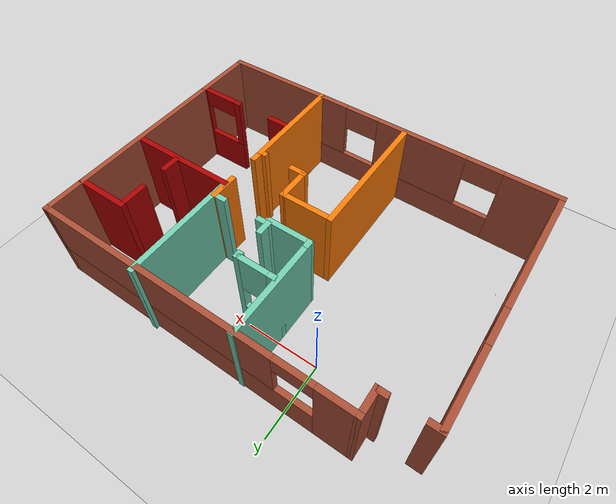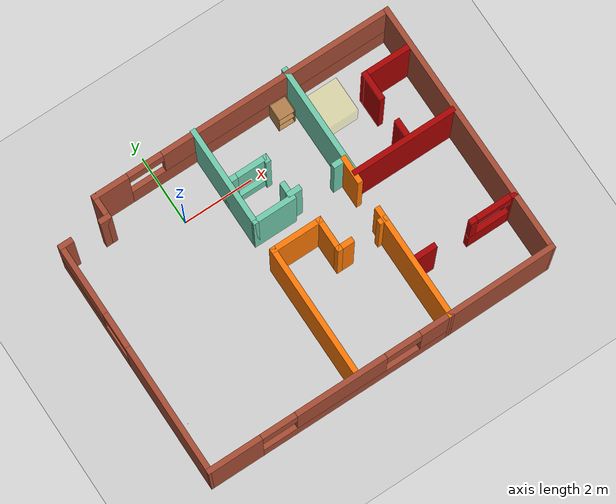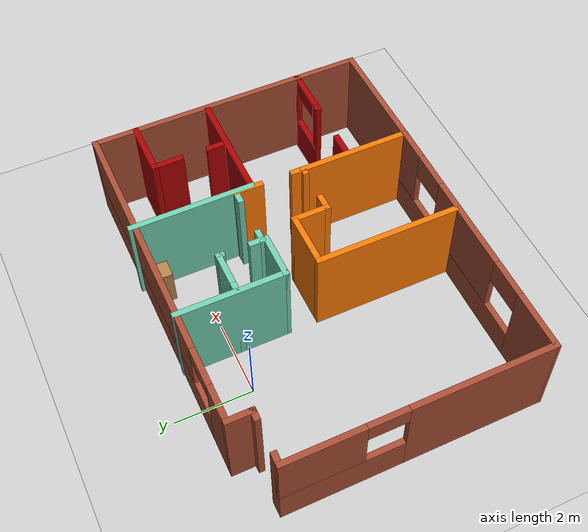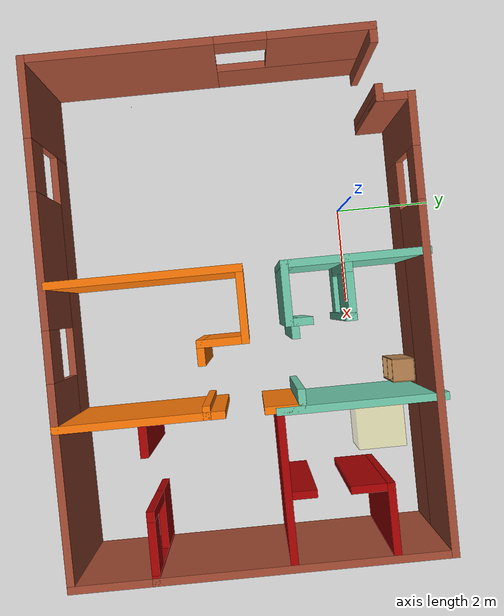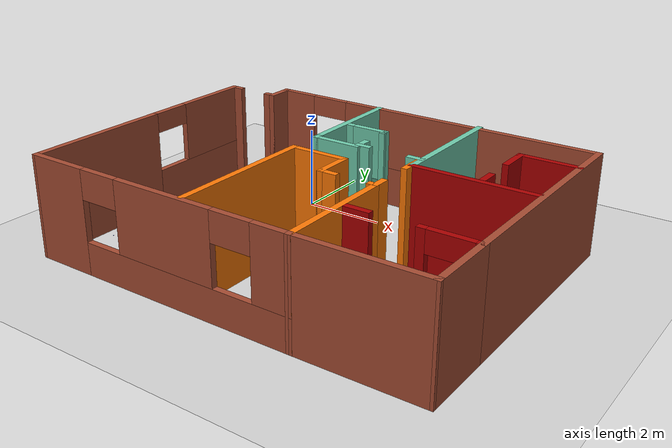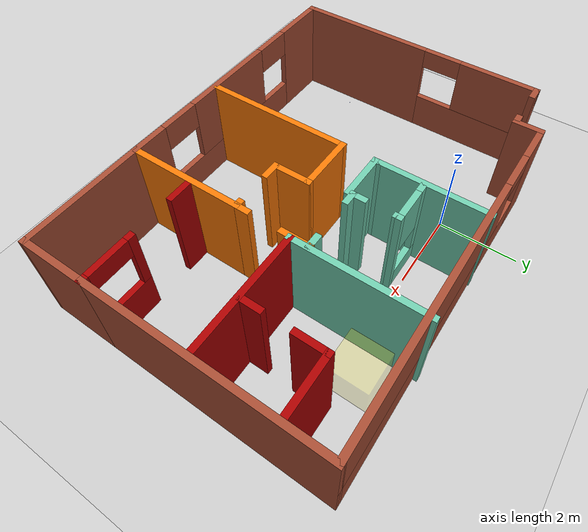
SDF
<sdf version="1.6">
 <world name="default">
  <model name="ground_plane">
   <static>1</static>
   <link name="link">
    <collision name="collision">
     <geometry><plane><normal>0 0 1</normal><size>100 100</size></plane></geometry>
     <surface><friction><ode><mu>100</mu><mu2>50</mu2></ode></friction></surface>
    </collision>
    <visual name="visual">
     <cast_shadows>0</cast_shadows>
     <geometry><plane><normal>0 0 1</normal><size>100 100</size></plane></geometry>
     <material>
      <script><uri>file://media/materials/scripts/gazebo.material</uri><name>Gazebo/Grey</name></script>
     </material>
    </visual>
   </link>
  </model>
  <model name="Building">
   <pose>1.9017 -2.33053 0 0 -0 0</pose>
   <link name="Wall_0">
    <pose>-4.30016 2.9635 0 0 -0 0</pose>
    <visual name="Wall_0_Visual_0">
     <pose>-0.550505 0 1.25 0 -0 0</pose>
     <geometry><box><size>0.39899 0.15 2.5</size></box></geometry>
     <material>
      <script><uri>file://media/materials/scripts/gazebo.material</uri><name>Gazebo/Bricks</name></script>
      <ambient>0.666667 0 0 1</ambient>
     </material>
     <meta><layer>0</layer></meta>
    </visual>
    <collision name="Wall_0_Collision_0">
     <geometry><box><size>0.39899 0.15 2.5</size></box></geometry>
     <pose>-0.550505 0 1.25 0 -0 0</pose>
    </collision>
    <visual name="Wall_0_Visual_1">
     <pose>0.581495 0 1.25 0 -0 0</pose>
     <geometry><box><size>0.33701 0.15 2.5</size></box></geometry>
     <material>
      <script><uri>file://media/materials/scripts/gazebo.material</uri><name>Gazebo/Bricks</name></script>
      <ambient>0.666667 0 0 1</ambient>
     </material>
     <meta><layer>0</layer></meta>
    </visual>
    <collision name="Wall_0_Collision_1">
     <geometry><box><size>0.33701 0.15 2.5</size></box></geometry>
     <pose>0.581495 0 1.25 0 -0 0</pose>
    </collision>
   </link>
   <link name="Wall_1">
    <collision name="Wall_1_Collision">
     <geometry><box><size>0.75 0.15 2.5</size></box></geometry>
     <pose>0 0 1.25 0 -0 0</pose>
    </collision>
    <visual name="Wall_1_Visual">
     <pose>0 0 1.25 0 -0 0</pose>
     <geometry><box><size>0.75 0.15 2.5</size></box></geometry>
     <material>
      <script><uri>file://media/materials/scripts/gazebo.material</uri><name>Gazebo/Bricks</name></script>
      <ambient>0.666667 0 0 1</ambient>
     </material>
     <meta><layer>0</layer></meta>
    </visual>
    <pose>-3.62515 3.2635 0 0 -0 1.5708</pose>
   </link>
   <link name="Wall_11">
    <pose>0.391864 1.53887 0 0 -0 1.5708</pose>
    <visual name="Wall_11_Visual_0">
     <pose>-0.412394 0 1.25 0 -0 0</pose>
     <geometry><box><size>0.425213 0.15 2.5</size></box></geometry>
     <material>
      <script><uri>file://media/materials/scripts/gazebo.material</uri><name>Gazebo/Grey</name></script>
      <ambient>0.435294 0.796078 0.67451 1</ambient>
     </material>
     <meta><layer>0</layer></meta>
    </visual>
    <collision name="Wall_11_Collision_0">
     <geometry><box><size>0.425213 0.15 2.5</size></box></geometry>
     <pose>-0.412394 0 1.25 0 -0 0</pose>
    </collision>
    <visual name="Wall_11_Visual_1">
     <pose>0.515606 0 1.25 0 -0 0</pose>
     <geometry><box><size>0.218787 0.15 2.5</size></box></geometry>
     <material>
      <script><uri>file://media/materials/scripts/gazebo.material</uri><name>Gazebo/Grey</name></script>
      <ambient>0.435294 0.796078 0.67451 1</ambient>
     </material>
     <meta><layer>0</layer></meta>
    </visual>
    <collision name="Wall_11_Collision_1">
     <geometry><box><size>0.218787 0.15 2.5</size></box></geometry>
     <pose>0.515606 0 1.25 0 -0 0</pose>
    </collision>
   </link>
   <link name="Wall_12">
    <pose>-0.158136 2.08887 0 0 -0 3.14159</pose>
    <visual name="Wall_12_Visual_0">
     <pose>-0.568138 0 1.25 0 -0 0</pose>
     <geometry><box><size>0.113724 0.15 2.5</size></box></geometry>
     <material>
      <script><uri>file://media/materials/scripts/gazebo.material</uri><name>Gazebo/Grey</name></script>
      <ambient>0.435294 0.796078 0.67451 1</ambient>
     </material>
     <meta><layer>0</layer></meta>
    </visual>
    <collision name="Wall_12_Collision_0">
     <geometry><box><size>0.113724 0.15 2.5</size></box></geometry>
     <pose>-0.568138 0 1.25 0 -0 0</pose>
    </collision>
    <visual name="Wall_12_Visual_1">
     <pose>0.056862 0 0.25 0 -0 0</pose>
     <geometry><box><size>1.13628 0.15 0.5</size></box></geometry>
     <material>
      <script><uri>file://media/materials/scripts/gazebo.material</uri><name>Gazebo/Grey</name></script>
      <ambient>0.435294 0.796078 0.67451 1</ambient>
     </material>
     <meta><layer>0</layer></meta>
    </visual>
    <collision name="Wall_12_Collision_1">
     <geometry><box><size>1.13628 0.15 0.5</size></box></geometry>
     <pose>0.056862 0 0.25 0 -0 0</pose>
    </collision>
    <visual name="Wall_12_Visual_2">
     <pose>0.456862 0 1.5 0 -0 0</pose>
     <geometry><box><size>0.336276 0.15 2</size></box></geometry>
     <material>
      <script><uri>file://media/materials/scripts/gazebo.material</uri><name>Gazebo/Grey</name></script>
      <ambient>0.435294 0.796078 0.67451 1</ambient>
     </material>
     <meta><layer>0</layer></meta>
    </visual>
    <collision name="Wall_12_Collision_2">
     <geometry><box><size>0.336276 0.15 2</size></box></geometry>
     <pose>0.456862 0 1.5 0 -0 0</pose>
    </collision>
    <visual name="Wall_12_Visual_3">
     <pose>-0.111276 0 1.9 0 -0 0</pose>
     <geometry><box><size>0.8 0.15 1.2</size></box></geometry>
     <material>
      <script><uri>file://media/materials/scripts/gazebo.material</uri><name>Gazebo/Grey</name></script>
      <ambient>0.435294 0.796078 0.67451 1</ambient>
     </material>
     <meta><layer>0</layer></meta>
    </visual>
    <collision name="Wall_12_Collision_3">
     <geometry><box><size>0.8 0.15 1.2</size></box></geometry>
     <pose>-0.111276 0 1.9 0 -0 0</pose>
    </collision>
   </link>
   <link name="Wall_16">
    <pose>1.19186 0.988869 0 0 -0 0</pose>
    <visual name="Wall_16_Visual_0">
     <pose>-0.680281 0 1.25 0 -0 0</pose>
     <geometry><box><size>0.389438 0.15 2.5</size></box></geometry>
     <material>
      <script><uri>file://media/materials/scripts/gazebo.material</uri><name>Gazebo/Grey</name></script>
      <ambient>0.435294 0.796078 0.67451 1</ambient>
     </material>
     <meta><layer>0</layer></meta>
    </visual>
    <collision name="Wall_16_Collision_0">
     <geometry><box><size>0.389438 0.15 2.5</size></box></geometry>
     <pose>-0.680281 0 1.25 0 -0 0</pose>
    </collision>
    <visual name="Wall_16_Visual_1">
     <pose>0.663744 0 1.25 0 -0 0</pose>
     <geometry><box><size>0.422512 0.15 2.5</size></box></geometry>
     <material>
      <script><uri>file://media/materials/scripts/gazebo.material</uri><name>Gazebo/Grey</name></script>
      <ambient>0.435294 0.796078 0.67451 1</ambient>
     </material>
     <meta><layer>0</layer></meta>
    </visual>
    <collision name="Wall_16_Collision_1">
     <geometry><box><size>0.422512 0.15 2.5</size></box></geometry>
     <pose>0.663744 0 1.25 0 -0 0</pose>
    </collision>
   </link>
   <link name="Wall_18">
    <collision name="Wall_18_Collision">
     <geometry><box><size>0.25 0.15 2.5</size></box></geometry>
     <pose>0 0 1.25 0 -0 0</pose>
    </collision>
    <visual name="Wall_18_Visual">
     <pose>0 0 1.25 0 -0 0</pose>
     <geometry><box><size>0.25 0.15 2.5</size></box></geometry>
     <material>
      <script><uri>file://media/materials/scripts/gazebo.material</uri><name>Gazebo/Grey</name></script>
      <ambient>0.435294 0.796078 0.67451 1</ambient>
     </material>
     <meta><layer>0</layer></meta>
    </visual>
    <pose>-0.708136 0.938869 0 0 0 -1.5708</pose>
   </link>
   <link name="Wall_19">
    <collision name="Wall_19_Collision">
     <geometry><box><size>1.25 0.15 2.5</size></box></geometry>
     <pose>0 0 1.25 0 -0 0</pose>
    </collision>
    <visual name="Wall_19_Visual">
     <pose>0 0 1.25 0 -0 0</pose>
     <geometry><box><size>1.25 0.15 2.5</size></box></geometry>
     <material>
      <script><uri>file://media/materials/scripts/gazebo.material</uri><name>Gazebo/Grey</name></script>
      <ambient>0.435294 0.796078 0.67451 1</ambient>
     </material>
     <meta><layer>0</layer></meta>
    </visual>
    <pose>-0.158136 0.888869 0 0 -0 0</pose>
   </link>
   <link name="Wall_2">
    <pose>0.674845 3.5635 0 0 -0 0</pose>
    <visual name="Wall_2_Visual_0">
     <pose>-3.86007 0 1.25 0 -0 0</pose>
     <geometry><box><size>1.02985 0.15 2.5</size></box></geometry>
     <material>
      <script><uri>file://media/materials/scripts/gazebo.material</uri><name>Gazebo/Bricks</name></script>
      <ambient>0.666667 0 0 1</ambient>
     </material>
     <meta><layer>0</layer></meta>
    </visual>
    <collision name="Wall_2_Collision_0">
     <geometry><box><size>1.02985 0.15 2.5</size></box></geometry>
     <pose>-3.86007 0 1.25 0 -0 0</pose>
    </collision>
    <visual name="Wall_2_Visual_1">
     <pose>0.514926 0 0.5 0 -0 0</pose>
     <geometry><box><size>7.72015 0.15 1</size></box></geometry>
     <material>
      <script><uri>file://media/materials/scripts/gazebo.material</uri><name>Gazebo/Bricks</name></script>
      <ambient>0.666667 0 0 1</ambient>
     </material>
     <meta><layer>0</layer></meta>
    </visual>
    <collision name="Wall_2_Collision_1">
     <geometry><box><size>7.72015 0.15 1</size></box></geometry>
     <pose>0.514926 0 0.5 0 -0 0</pose>
    </collision>
    <visual name="Wall_2_Visual_2">
     <pose>1.01493 0 1.75 0 -0 0</pose>
     <geometry><box><size>6.72015 0.15 1.5</size></box></geometry>
     <material>
      <script><uri>file://media/materials/scripts/gazebo.material</uri><name>Gazebo/Bricks</name></script>
      <ambient>0.666667 0 0 1</ambient>
     </material>
     <meta><layer>0</layer></meta>
    </visual>
    <collision name="Wall_2_Collision_2">
     <geometry><box><size>6.72015 0.15 1.5</size></box></geometry>
     <pose>1.01493 0 1.75 0 -0 0</pose>
    </collision>
    <visual name="Wall_2_Visual_3">
     <pose>-2.84515 0 2.25 0 -0 0</pose>
     <geometry><box><size>1 0.15 0.5</size></box></geometry>
     <material>
      <script><uri>file://media/materials/scripts/gazebo.material</uri><name>Gazebo/Bricks</name></script>
      <ambient>0.666667 0 0 1</ambient>
     </material>
     <meta><layer>0</layer></meta>
    </visual>
    <collision name="Wall_2_Collision_3">
     <geometry><box><size>1 0.15 0.5</size></box></geometry>
     <pose>-2.84515 0 2.25 0 -0 0</pose>
    </collision>
   </link>
   <link name="Wall_3">
    <collision name="Wall_3_Collision">
     <geometry><box><size>5.75 0.15 2.5</size></box></geometry>
     <pose>0 0 1.25 0 -0 0</pose>
    </collision>
    <visual name="Wall_3_Visual">
     <pose>0 0 1.25 0 -0 0</pose>
     <geometry><box><size>5.75 0.15 2.5</size></box></geometry>
     <material>
      <script><uri>file://media/materials/scripts/gazebo.material</uri><name>Gazebo/Bricks</name></script>
      <ambient>0.666667 0 0 1</ambient>
     </material>
     <meta><layer>0</layer></meta>
    </visual>
    <pose>4.97485 0.7635 0 0 0 -1.5708</pose>
   </link>
   <link name="Wall_37">
    <collision name="Wall_37_Collision">
     <geometry><box><size>3.25 0.15 2.5</size></box></geometry>
     <pose>0 0 1.25 0 -0 0</pose>
    </collision>
    <visual name="Wall_37_Visual">
     <pose>0 0 1.25 0 -0 0</pose>
     <geometry><box><size>3.25 0.15 2.5</size></box></geometry>
     <material>
      <script><uri>file://media/materials/scripts/gazebo.material</uri><name>Gazebo/Grey</name></script>
      <ambient>0.435294 0.796078 0.67451 1</ambient>
     </material>
     <meta><layer>0</layer></meta>
    </visual>
    <pose>2.03032 2.10888 0 0 0 -1.5708</pose>
   </link>
   <link name="Wall_39">
    <collision name="Wall_39_Collision">
     <geometry><box><size>3.75 0.15 2.5</size></box></geometry>
     <pose>0 0 1.25 0 -0 0</pose>
    </collision>
    <visual name="Wall_39_Visual">
     <pose>0 0 1.25 0 -0 0</pose>
     <geometry><box><size>3.75 0.15 2.5</size></box></geometry>
     <material>
      <script><uri>file://media/materials/scripts/gazebo.material</uri><name>Gazebo/Grey</name></script>
      <ambient>0.996078 0.47451 0.0196078 1</ambient>
     </material>
     <meta><layer>0</layer></meta>
    </visual>
    <pose>-0.719298 -1.75833 0 0 -0 1.5708</pose>
   </link>
   <link name="Wall_4">
    <pose>3.54984 -2.0365 0 0 -0 3.14159</pose>
    <visual name="Wall_4_Visual_0">
     <pose>-1.40037 0 1.25 0 -0 0</pose>
     <geometry><box><size>0.199251 0.15 2.5</size></box></geometry>
     <material>
      <script><uri>file://media/materials/scripts/gazebo.material</uri><name>Gazebo/Grey</name></script>
      <ambient>0.666667 0 0 1</ambient>
     </material>
     <meta><layer>0</layer></meta>
    </visual>
    <collision name="Wall_4_Collision_0">
     <geometry><box><size>0.199251 0.15 2.5</size></box></geometry>
     <pose>-1.40037 0 1.25 0 -0 0</pose>
    </collision>
    <visual name="Wall_4_Visual_1">
     <pose>1.1996 0 1.25 0 -0 0</pose>
     <geometry><box><size>0.600792 0.15 2.5</size></box></geometry>
     <material>
      <script><uri>file://media/materials/scripts/gazebo.material</uri><name>Gazebo/Grey</name></script>
      <ambient>0.666667 0 0 1</ambient>
     </material>
     <meta><layer>0</layer></meta>
    </visual>
    <collision name="Wall_4_Collision_1">
     <geometry><box><size>0.600792 0.15 2.5</size></box></geometry>
     <pose>1.1996 0 1.25 0 -0 0</pose>
    </collision>
    <visual name="Wall_4_Visual_2">
     <pose>-0.70027 0 0.5 0 -0 0</pose>
     <geometry><box><size>1.20096 0.15 1</size></box></geometry>
     <material>
      <script><uri>file://media/materials/scripts/gazebo.material</uri><name>Gazebo/Grey</name></script>
      <ambient>0.666667 0 0 1</ambient>
     </material>
     <meta><layer>0</layer></meta>
    </visual>
    <collision name="Wall_4_Collision_2">
     <geometry><box><size>1.20096 0.15 1</size></box></geometry>
     <pose>-0.70027 0 0.5 0 -0 0</pose>
    </collision>
    <visual name="Wall_4_Visual_3">
     <pose>-0.20027 0 1.75 0 -0 0</pose>
     <geometry><box><size>0.200957 0.15 1.5</size></box></geometry>
     <material>
      <script><uri>file://media/materials/scripts/gazebo.material</uri><name>Gazebo/Grey</name></script>
      <ambient>0.666667 0 0 1</ambient>
     </material>
     <meta><layer>0</layer></meta>
    </visual>
    <collision name="Wall_4_Collision_3">
     <geometry><box><size>0.200957 0.15 1.5</size></box></geometry>
     <pose>-0.20027 0 1.75 0 -0 0</pose>
    </collision>
    <visual name="Wall_4_Visual_4">
     <pose>-0.800749 0 2.25 0 -0 0</pose>
     <geometry><box><size>1 0.15 0.5</size></box></geometry>
     <material>
      <script><uri>file://media/materials/scripts/gazebo.material</uri><name>Gazebo/Grey</name></script>
      <ambient>0.666667 0 0 1</ambient>
     </material>
     <meta><layer>0</layer></meta>
    </visual>
    <collision name="Wall_4_Collision_4">
     <geometry><box><size>1 0.15 0.5</size></box></geometry>
     <pose>-0.800749 0 2.25 0 -0 0</pose>
    </collision>
   </link>
   <link name="Wall_50">
    <collision name="Wall_50_Collision">
     <geometry><box><size>1.5 0.15 2.5</size></box></geometry>
     <pose>0 0 1.25 0 -0 0</pose>
    </collision>
    <visual name="Wall_50_Visual">
     <pose>0 0 1.25 0 -0 0</pose>
     <geometry><box><size>1.5 0.15 2.5</size></box></geometry>
     <material>
      <script><uri>file://media/materials/scripts/gazebo.material</uri><name>Gazebo/Grey</name></script>
      <ambient>0.996078 0.47451 0.0196078 1</ambient>
     </material>
     <meta><layer>0</layer></meta>
    </visual>
    <pose>-0.044298 0.041665 0 0 -0 0</pose>
   </link>
   <link name="Wall_51">
    <collision name="Wall_51_Collision">
     <geometry><box><size>1 0.15 2.5</size></box></geometry>
     <pose>0 0 1.25 0 -0 0</pose>
    </collision>
    <visual name="Wall_51_Visual">
     <pose>0 0 1.25 0 -0 0</pose>
     <geometry><box><size>1 0.15 2.5</size></box></geometry>
     <material>
      <script><uri>file://media/materials/scripts/gazebo.material</uri><name>Gazebo/Grey</name></script>
      <ambient>0.996078 0.47451 0.0196078 1</ambient>
     </material>
     <meta><layer>0</layer></meta>
    </visual>
    <pose>0.630702 -0.383335 0 0 0 -1.5708</pose>
   </link>
   <link name="Wall_52">
    <pose>1.3057 -0.808335 0 0 -0 0</pose>
    <visual name="Wall_52_Visual_0">
     <pose>-0.504705 0 1.25 0 -0 0</pose>
     <geometry><box><size>0.490591 0.15 2.5</size></box></geometry>
     <material>
      <script><uri>file://media/materials/scripts/gazebo.material</uri><name>Gazebo/Grey</name></script>
      <ambient>0.996078 0.47451 0.0196078 1</ambient>
     </material>
     <meta><layer>0</layer></meta>
    </visual>
    <collision name="Wall_52_Collision_0">
     <geometry><box><size>0.490591 0.15 2.5</size></box></geometry>
     <pose>-0.504705 0 1.25 0 -0 0</pose>
    </collision>
    <visual name="Wall_52_Visual_1">
     <pose>0.617295 0 1.25 0 -0 0</pose>
     <geometry><box><size>0.265409 0.15 2.5</size></box></geometry>
     <material>
      <script><uri>file://media/materials/scripts/gazebo.material</uri><name>Gazebo/Grey</name></script>
      <ambient>0.996078 0.47451 0.0196078 1</ambient>
     </material>
     <meta><layer>0</layer></meta>
    </visual>
    <collision name="Wall_52_Collision_1">
     <geometry><box><size>0.265409 0.15 2.5</size></box></geometry>
     <pose>0.617295 0 1.25 0 -0 0</pose>
    </collision>
   </link>
   <link name="Wall_54">
    <collision name="Wall_54_Collision">
     <geometry><box><size>3 0.15 2.5</size></box></geometry>
     <pose>0 0 1.25 0 -0 0</pose>
    </collision>
    <visual name="Wall_54_Visual">
     <pose>0 0 1.25 0 -0 0</pose>
     <geometry><box><size>3 0.15 2.5</size></box></geometry>
     <material>
      <script><uri>file://media/materials/scripts/gazebo.material</uri><name>Gazebo/Grey</name></script>
      <ambient>0.996078 0.47451 0.0196078 1</ambient>
     </material>
     <meta><layer>0</layer></meta>
    </visual>
    <pose>1.9807 -2.23333 0 0 0 -1.5708</pose>
   </link>
   <link name="Wall_56">
    <pose>-1.49723 -3.64742 0 0 0 -0.003139</pose>
    <visual name="Wall_56_Visual_0">
     <pose>-2.77726 0 1.25 0 -0 0</pose>
     <geometry><box><size>1.55137 0.15 2.5</size></box></geometry>
     <material>
      <script><uri>file://media/materials/scripts/gazebo.material</uri><name>Gazebo/Bricks</name></script>
      <ambient>0.666667 0 0 1</ambient>
     </material>
     <meta><layer>0</layer></meta>
    </visual>
    <collision name="Wall_56_Collision_0">
     <geometry><box><size>1.55137 0.15 2.5</size></box></geometry>
     <pose>-2.77726 0 1.25 0 -0 0</pose>
    </collision>
    <visual name="Wall_56_Visual_1">
     <pose>0.775684 0 0.4 0 -0 0</pose>
     <geometry><box><size>5.55452 0.15 0.8</size></box></geometry>
     <material>
      <script><uri>file://media/materials/scripts/gazebo.material</uri><name>Gazebo/Bricks</name></script>
      <ambient>0.666667 0 0 1</ambient>
     </material>
     <meta><layer>0</layer></meta>
    </visual>
    <collision name="Wall_56_Collision_1">
     <geometry><box><size>5.55452 0.15 0.8</size></box></geometry>
     <pose>0.775684 0 0.4 0 -0 0</pose>
    </collision>
    <visual name="Wall_56_Visual_2">
     <pose>0.299823 0 1.65 0 -0 0</pose>
     <geometry><box><size>2.6028 0.15 1.7</size></box></geometry>
     <material>
      <script><uri>file://media/materials/scripts/gazebo.material</uri><name>Gazebo/Bricks</name></script>
      <ambient>0.666667 0 0 1</ambient>
     </material>
     <meta><layer>0</layer></meta>
    </visual>
    <collision name="Wall_56_Collision_2">
     <geometry><box><size>2.6028 0.15 1.7</size></box></geometry>
     <pose>0.299823 0 1.65 0 -0 0</pose>
    </collision>
    <visual name="Wall_56_Visual_3">
     <pose>3.07708 0 1.65 0 -0 0</pose>
     <geometry><box><size>0.951723 0.15 1.7</size></box></geometry>
     <material>
      <script><uri>file://media/materials/scripts/gazebo.material</uri><name>Gazebo/Bricks</name></script>
      <ambient>0.666667 0 0 1</ambient>
     </material>
     <meta><layer>0</layer></meta>
    </visual>
    <collision name="Wall_56_Collision_3">
     <geometry><box><size>0.951723 0.15 1.7</size></box></geometry>
     <pose>3.07708 0 1.65 0 -0 0</pose>
    </collision>
    <visual name="Wall_56_Visual_4">
     <pose>-1.50158 0 2.15 0 -0 0</pose>
     <geometry><box><size>1 0.15 0.7</size></box></geometry>
     <material>
      <script><uri>file://media/materials/scripts/gazebo.material</uri><name>Gazebo/Bricks</name></script>
      <ambient>0.666667 0 0 1</ambient>
     </material>
     <meta><layer>0</layer></meta>
    </visual>
    <collision name="Wall_56_Collision_4">
     <geometry><box><size>1 0.15 0.7</size></box></geometry>
     <pose>-1.50158 0 2.15 0 -0 0</pose>
    </collision>
    <visual name="Wall_56_Visual_5">
     <pose>2.10122 0 2.15 0 -0 0</pose>
     <geometry><box><size>1 0.15 0.7</size></box></geometry>
     <material>
      <script><uri>file://media/materials/scripts/gazebo.material</uri><name>Gazebo/Bricks</name></script>
      <ambient>0.666667 0 0 1</ambient>
     </material>
     <meta><layer>0</layer></meta>
    </visual>
    <collision name="Wall_56_Collision_5">
     <geometry><box><size>1 0.15 0.7</size></box></geometry>
     <pose>2.10122 0 2.15 0 -0 0</pose>
    </collision>
   </link>
   <link name="Wall_58">
    <pose>1.98628 0.090267 0 0 -0 1.56458</pose>
    <visual name="Wall_58_Visual_0">
     <pose>-0.761715 0 1.25 0 -0 0</pose>
     <geometry><box><size>0.423808 0.15 2.5</size></box></geometry>
     <material>
      <script><uri>file://media/materials/scripts/gazebo.material</uri><name>Gazebo/Grey</name></script>
      <ambient>0.996078 0.47451 0.0196078 1</ambient>
     </material>
     <meta><layer>0</layer></meta>
    </visual>
    <collision name="Wall_58_Collision_0">
     <geometry><box><size>0.423808 0.15 2.5</size></box></geometry>
     <pose>-0.761715 0 1.25 0 -0 0</pose>
    </collision>
    <visual name="Wall_58_Visual_1">
     <pose>0.577384 0 1.25 0 -0 0</pose>
     <geometry><box><size>0.792471 0.15 2.5</size></box></geometry>
     <material>
      <script><uri>file://media/materials/scripts/gazebo.material</uri><name>Gazebo/Grey</name></script>
      <ambient>0.996078 0.47451 0.0196078 1</ambient>
     </material>
     <meta><layer>0</layer></meta>
    </visual>
    <collision name="Wall_58_Collision_1">
     <geometry><box><size>0.792471 0.15 2.5</size></box></geometry>
     <pose>0.577384 0 1.25 0 -0 0</pose>
    </collision>
   </link>
   <link name="Wall_60">
    <collision name="Wall_60_Collision">
     <geometry><box><size>1.75 0.15 2.5</size></box></geometry>
     <pose>0 0 1.25 0 -0 0</pose>
    </collision>
    <visual name="Wall_60_Visual">
     <pose>0 0 1.25 0 -0 0</pose>
     <geometry><box><size>1.75 0.15 2.5</size></box></geometry>
     <material>
      <script><uri>file://media/materials/scripts/gazebo.material</uri><name>Gazebo/Bricks</name></script>
      <ambient>0.666667 0 0 1</ambient>
     </material>
     <meta><layer>0</layer></meta>
    </visual>
    <pose>4.97485 -2.8365 0 0 0 -1.5708</pose>
   </link>
   <link name="Wall_61">
    <collision name="Wall_61_Collision">
     <geometry><box><size>3.14422 0.15 2.5</size></box></geometry>
     <pose>0 0 1.25 0 -0 0</pose>
    </collision>
    <visual name="Wall_61_Visual">
     <pose>0 0 1.25 0 -0 0</pose>
     <geometry><box><size>3.14422 0.15 2.5</size></box></geometry>
     <material>
      <script><uri>file://media/materials/scripts/gazebo.material</uri><name>Gazebo/Bricks</name></script>
      <ambient>0.666667 0 0 1</ambient>
     </material>
     <meta><layer>0</layer></meta>
    </visual>
    <pose>3.47777 -3.64742 0 0 0 -3.1343</pose>
   </link>
   <link name="Wall_63">
    <collision name="Wall_63_Collision">
     <geometry><box><size>1.5 0.15 2.5</size></box></geometry>
     <pose>0 0 1.25 0 -0 0</pose>
    </collision>
    <visual name="Wall_63_Visual">
     <pose>0 0 1.25 0 -0 0</pose>
     <geometry><box><size>1.5 0.15 2.5</size></box></geometry>
     <material>
      <script><uri>file://media/materials/scripts/gazebo.material</uri><name>Gazebo/Grey</name></script>
      <ambient>0.666667 0 0 1</ambient>
     </material>
     <meta><layer>0</layer></meta>
    </visual>
    <pose>4.28835 2.48996 0 0 -0 3.14159</pose>
   </link>
   <link name="Wall_64">
    <pose>3.61335 1.56496 0 0 0 -1.5708</pose>
    <visual name="Wall_64_Visual_0">
     <pose>-0.582062 0 1.25 0 -0 0</pose>
     <geometry><box><size>0.835877 0.15 2.5</size></box></geometry>
     <material>
      <script><uri>file://media/materials/scripts/gazebo.material</uri><name>Gazebo/Grey</name></script>
      <ambient>0.666667 0 0 1</ambient>
     </material>
     <meta><layer>0</layer></meta>
    </visual>
    <collision name="Wall_64_Collision_0">
     <geometry><box><size>0.835877 0.15 2.5</size></box></geometry>
     <pose>-0.582062 0 1.25 0 -0 0</pose>
    </collision>
    <visual name="Wall_64_Visual_1">
     <pose>0.727938 0 1.25 0 -0 0</pose>
     <geometry><box><size>0.544123 0.15 2.5</size></box></geometry>
     <material>
      <script><uri>file://media/materials/scripts/gazebo.material</uri><name>Gazebo/Grey</name></script>
      <ambient>0.666667 0 0 1</ambient>
     </material>
     <meta><layer>0</layer></meta>
    </visual>
    <collision name="Wall_64_Collision_1">
     <geometry><box><size>0.544123 0.15 2.5</size></box></geometry>
     <pose>0.727938 0 1.25 0 -0 0</pose>
    </collision>
   </link>
   <link name="Wall_66">
    <collision name="Wall_66_Collision">
     <geometry><box><size>3 0.15 2.5</size></box></geometry>
     <pose>0 0 1.25 0 -0 0</pose>
    </collision>
    <visual name="Wall_66_Visual">
     <pose>0 0 1.25 0 -0 0</pose>
     <geometry><box><size>3 0.15 2.5</size></box></geometry>
     <material>
      <script><uri>file://media/materials/scripts/gazebo.material</uri><name>Gazebo/Grey</name></script>
      <ambient>0.666667 0 0 1</ambient>
     </material>
     <meta><layer>0</layer></meta>
    </visual>
    <pose>3.45533 0.55888 0 0 -0 0</pose>
   </link>
   <link name="Wall_7">
    <pose>-4.97515 -0.3365 0 0 -0 1.5708</pose>
    <visual name="Wall_7_Visual_0">
     <pose>-1.53025 0 1.25 0 -0 0</pose>
     <geometry><box><size>3.6895 0.15 2.5</size></box></geometry>
     <material>
      <script><uri>file://media/materials/scripts/gazebo.material</uri><name>Gazebo/Bricks</name></script>
      <ambient>0.666667 0 0 1</ambient>
     </material>
     <meta><layer>0</layer></meta>
    </visual>
    <collision name="Wall_7_Collision_0">
     <geometry><box><size>3.6895 0.15 2.5</size></box></geometry>
     <pose>-1.53025 0 1.25 0 -0 0</pose>
    </collision>
    <visual name="Wall_7_Visual_1">
     <pose>1.84475 0 0.5 0 -0 0</pose>
     <geometry><box><size>3.0605 0.15 1</size></box></geometry>
     <material>
      <script><uri>file://media/materials/scripts/gazebo.material</uri><name>Gazebo/Bricks</name></script>
      <ambient>0.666667 0 0 1</ambient>
     </material>
     <meta><layer>0</layer></meta>
    </visual>
    <collision name="Wall_7_Collision_1">
     <geometry><box><size>3.0605 0.15 1</size></box></geometry>
     <pose>1.84475 0 0.5 0 -0 0</pose>
    </collision>
    <visual name="Wall_7_Visual_2">
     <pose>2.34475 0 1.75 0 -0 0</pose>
     <geometry><box><size>2.0605 0.15 1.5</size></box></geometry>
     <material>
      <script><uri>file://media/materials/scripts/gazebo.material</uri><name>Gazebo/Bricks</name></script>
      <ambient>0.666667 0 0 1</ambient>
     </material>
     <meta><layer>0</layer></meta>
    </visual>
    <collision name="Wall_7_Collision_2">
     <geometry><box><size>2.0605 0.15 1.5</size></box></geometry>
     <pose>2.34475 0 1.75 0 -0 0</pose>
    </collision>
    <visual name="Wall_7_Visual_3">
     <pose>0.814501 0 2.25 0 -0 0</pose>
     <geometry><box><size>1 0.15 0.5</size></box></geometry>
     <material>
      <script><uri>file://media/materials/scripts/gazebo.material</uri><name>Gazebo/Bricks</name></script>
      <ambient>0.666667 0 0 1</ambient>
     </material>
     <meta><layer>0</layer></meta>
    </visual>
    <collision name="Wall_7_Collision_3">
     <geometry><box><size>1 0.15 0.5</size></box></geometry>
     <pose>0.814501 0 2.25 0 -0 0</pose>
    </collision>
   </link>
   <link name="Wall_9">
    <collision name="Wall_9_Collision">
     <geometry><box><size>2.75 0.15 2.5</size></box></geometry>
     <pose>0 0 1.25 0 -0 0</pose>
    </collision>
    <visual name="Wall_9_Visual">
     <pose>0 0 1.25 0 -0 0</pose>
     <geometry><box><size>2.75 0.15 2.5</size></box></geometry>
     <material>
      <script><uri>file://media/materials/scripts/gazebo.material</uri><name>Gazebo/Grey</name></script>
      <ambient>0.435294 0.796078 0.67451 1</ambient>
     </material>
     <meta><layer>0</layer></meta>
    </visual>
    <pose>-0.708136 2.28887 0 0 0 -1.5708</pose>
   </link>
   <static>1</static>
  </model>
  <model name="cabinet">
   <static>1</static>
   <link name="cabinet_bottom_plate">
    <inertial>
     <pose>0 0 -1 0 -0 0</pose>
     <inertia><ixx>2.05</ixx><ixy>0</ixy><ixz>0</ixz><iyy>2.05</iyy><iyz>0</iyz><izz>2.05</izz></inertia>
     <mass>25</mass>
    </inertial>
    <collision name="cabinet_bottom_plate_geom">
     <pose>0 0 0.01 0 -0 0</pose>
     <geometry><box><size>0.45 0.45 0.02</size></box></geometry>
    </collision>
    <visual name="cabinet_bottom_plate_geom_visual">
     <pose>0 0 0.01 0 -0 0</pose>
     <geometry><box><size>0.45 0.45 0.02</size></box></geometry>
     <material>
      <script><uri>file://media/materials/scripts/gazebo.material</uri><name>Gazebo/Wood</name></script>
     </material>
    </visual>
    <collision name="cabinet_bottom_plate_geom_cabinet_back_plate">
     <pose>0.235 0 0.51 0 -0 0</pose>
     <geometry><box><size>0.02 0.45 1.02</size></box></geometry>
    </collision>
    <visual name="cabinet_bottom_plate_geom_cabinet_back_plate_visual">
     <pose>0.235 0 0.51 0 -0 0</pose>
     <geometry><box><size>0.02 0.45 1.02</size></box></geometry>
     <material>
      <script><uri>file://media/materials/scripts/gazebo.material</uri><name>Gazebo/Wood</name></script>
     </material>
    </visual>
    <collision name="cabinet_bottom_plate_geom_cabinet_left_plate">
     <pose>0 0.235 0.51 0 -0 0</pose>
     <geometry><box><size>0.45 0.02 1.02</size></box></geometry>
    </collision>
    <visual name="cabinet_bottom_plate_geom_cabinet_left_plate_visual">
     <pose>0 0.235 0.51 0 -0 0</pose>
     <geometry><box><size>0.45 0.02 1.02</size></box></geometry>
     <material>
      <script><uri>file://media/materials/scripts/gazebo.material</uri><name>Gazebo/Wood</name></script>
     </material>
    </visual>
    <collision name="cabinet_bottom_plate_geom_cabinet_middle_plate">
     <pose>0 0 0.51 0 -0 0</pose>
     <geometry><box><size>0.45 0.45 0.02</size></box></geometry>
    </collision>
    <visual name="cabinet_bottom_plate_geom_cabinet_middle_plate_visual">
     <pose>0 0 0.51 0 -0 0</pose>
     <geometry><box><size>0.45 0.45 0.02</size></box></geometry>
     <material>
      <script><uri>file://media/materials/scripts/gazebo.material</uri><name>Gazebo/Wood</name></script>
     </material>
    </visual>
    <collision name="cabinet_bottom_plate_geom_cabinet_right_plate">
     <pose>0 -0.235 0.51 0 -0 0</pose>
     <geometry><box><size>0.45 0.02 1.02</size></box></geometry>
    </collision>
    <visual name="cabinet_bottom_plate_geom_cabinet_right_plate_visual">
     <pose>0 -0.235 0.51 0 -0 0</pose>
     <geometry><box><size>0.45 0.02 1.02</size></box></geometry>
     <material>
      <script><uri>file://media/materials/scripts/gazebo.material</uri><name>Gazebo/Wood</name></script>
     </material>
    </visual>
    <collision name="cabinet_bottom_plate_geom_cabinet_top_plate">
     <pose>0 0 1.01 0 -0 0</pose>
     <geometry><box><size>0.45 0.45 0.02</size></box></geometry>
    </collision>
    <visual name="cabinet_bottom_plate_geom_cabinet_top_plate_visual">
     <pose>0 0 1.01 0 -0 0</pose>
     <geometry><box><size>0.45 0.45 0.02</size></box></geometry>
     <material>
      <script><uri>file://media/materials/scripts/gazebo.material</uri><name>Gazebo/Wood</name></script>
     </material>
    </visual>
   </link>
   <pose>3.53679 0.899806 0 0 -0 1.55192</pose>
  </model>
  <model name="marble_1_5cm">
   <link name="link">
    <pose>0 0 0.0075 0 -0 0</pose>
    <inertial>
     <mass>0.0062</mass>
     <inertia>
      <ixx>1.395e-07</ixx>
      <ixy>0</ixy>
      <ixz>0</ixz>
      <iyy>1.395e-07</iyy>
      <iyz>0</iyz>
      <izz>1.395e-07</izz>
     </inertia>
    </inertial>
    <collision name="collision">
     <geometry><sphere><radius>0.0075</radius></sphere></geometry>
     <surface>
      <contact>
       <poissons_ratio>0.22</poissons_ratio>
       <elastic_modulus>5.1e+10</elastic_modulus>
       <ode><kp>100000</kp><kd>100</kd><max_vel>100</max_vel><min_depth>0.001</min_depth></ode>
      </contact>
      <friction>
       <torsional>
        <coefficient>1</coefficient>
        <use_patch_radius>0</use_patch_radius>
        <surface_radius>0.01</surface_radius>
       </torsional>
      </friction>
     </surface>
    </collision>
    <visual name="visual">
     <geometry><sphere><radius>0.0075</radius></sphere></geometry>
     <material>
      <script><uri>file://media/materials/scripts/gazebo.material</uri><name>Gazebo/Blue</name></script>
     </material>
    </visual>
    <velocity_decay><linear>0</linear><angular>0.005</angular></velocity_decay>
   </link>
   <pose>-2.74147 -4.33994 -0.001001 0 -0 0</pose>
  </model>
  <model name="RegionEventBox">
   <static>1</static>
   <pose>4.63342 0.358262 0 0 -0 0</pose>
   <link name="link">
    <visual name="visual">
     <transparency>0.75</transparency>
     <geometry><box><size>1 1 1.75</size></box></geometry>
     <material>
      <script><uri>file://media/materials/scripts/gazebo.material</uri><name>Gazebo/Yellow</name></script>
     </material>
    </visual>
   </link>
   <plugin name="region_event_box" filename="libRegionEventBoxPlugin.so">
    <event><name>model_in_region_event_box</name><type>inclusion</type><active>true</active></event>
   </plugin>
  </model>
 </world>
</sdf>
